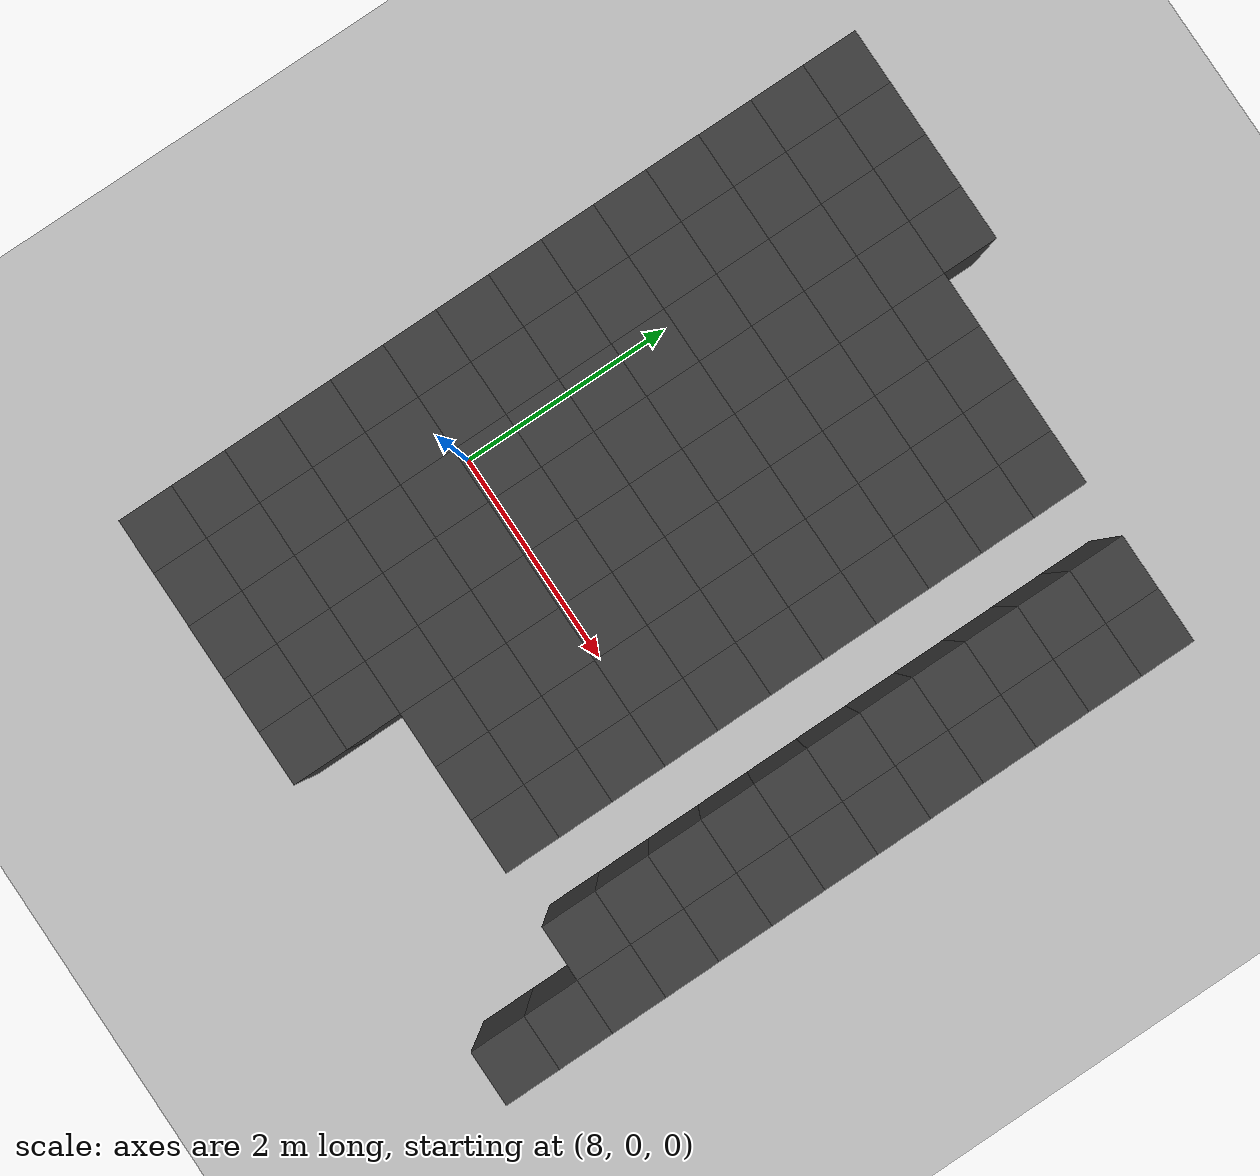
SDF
<sdf version="1.7">
 <world name="map_14190">
  <model name="ground_plane">
   <static>true</static>
   <link name="link">
    <collision name="collision">
     <geometry><plane><normal>0 0 1</normal><size>200 200</size></plane></geometry>
    </collision>
    <visual name="visual">
     <geometry><plane><normal>0 0 1</normal><size>200 200</size></plane></geometry>
     <material><ambient>0.8 0.8 0.8 1</ambient><diffuse>0.8 0.8 0.8 1</diffuse></material>
    </visual>
   </link>
  </model>
  <model name="maze_environment">
   <static>true</static>
   <link name="wall_586">
    <pose>7.250 4.250 0.500 0 0 0</pose>
    <collision name="col"><geometry><box><size>0.5 0.5 1.0</size></box></geometry></collision>
    <visual name="vis">
     <geometry><box><size>0.5 0.5 1.0</size></box></geometry>
     <material><ambient>0.15 0.15 0.15 1</ambient><diffuse>0.25 0.25 0.25 1</diffuse></material>
    </visual>
   </link>
   <link name="wall_587">
    <pose>7.750 4.250 0.500 0 0 0</pose>
    <collision name="col"><geometry><box><size>0.5 0.5 1.0</size></box></geometry></collision>
    <visual name="vis">
     <geometry><box><size>0.5 0.5 1.0</size></box></geometry>
     <material><ambient>0.15 0.15 0.15 1</ambient><diffuse>0.25 0.25 0.25 1</diffuse></material>
    </visual>
   </link>
   <link name="wall_588">
    <pose>8.250 4.250 0.500 0 0 0</pose>
    <collision name="col"><geometry><box><size>0.5 0.5 1.0</size></box></geometry></collision>
    <visual name="vis">
     <geometry><box><size>0.5 0.5 1.0</size></box></geometry>
     <material><ambient>0.15 0.15 0.15 1</ambient><diffuse>0.25 0.25 0.25 1</diffuse></material>
    </visual>
   </link>
   <link name="wall_589">
    <pose>8.750 4.250 0.500 0 0 0</pose>
    <collision name="col"><geometry><box><size>0.5 0.5 1.0</size></box></geometry></collision>
    <visual name="vis">
     <geometry><box><size>0.5 0.5 1.0</size></box></geometry>
     <material><ambient>0.15 0.15 0.15 1</ambient><diffuse>0.25 0.25 0.25 1</diffuse></material>
    </visual>
   </link>
   <link name="wall_616">
    <pose>7.250 3.750 0.500 0 0 0</pose>
    <collision name="col"><geometry><box><size>0.5 0.5 1.0</size></box></geometry></collision>
    <visual name="vis">
     <geometry><box><size>0.5 0.5 1.0</size></box></geometry>
     <material><ambient>0.15 0.15 0.15 1</ambient><diffuse>0.25 0.25 0.25 1</diffuse></material>
    </visual>
   </link>
   <link name="wall_617">
    <pose>7.750 3.750 0.500 0 0 0</pose>
    <collision name="col"><geometry><box><size>0.5 0.5 1.0</size></box></geometry></collision>
    <visual name="vis">
     <geometry><box><size>0.5 0.5 1.0</size></box></geometry>
     <material><ambient>0.15 0.15 0.15 1</ambient><diffuse>0.25 0.25 0.25 1</diffuse></material>
    </visual>
   </link>
   <link name="wall_618">
    <pose>8.250 3.750 0.500 0 0 0</pose>
    <collision name="col"><geometry><box><size>0.5 0.5 1.0</size></box></geometry></collision>
    <visual name="vis">
     <geometry><box><size>0.5 0.5 1.0</size></box></geometry>
     <material><ambient>0.15 0.15 0.15 1</ambient><diffuse>0.25 0.25 0.25 1</diffuse></material>
    </visual>
   </link>
   <link name="wall_619">
    <pose>8.750 3.750 0.500 0 0 0</pose>
    <collision name="col"><geometry><box><size>0.5 0.5 1.0</size></box></geometry></collision>
    <visual name="vis">
     <geometry><box><size>0.5 0.5 1.0</size></box></geometry>
     <material><ambient>0.15 0.15 0.15 1</ambient><diffuse>0.25 0.25 0.25 1</diffuse></material>
    </visual>
   </link>
   <link name="wall_620">
    <pose>9.250 3.750 0.500 0 0 0</pose>
    <collision name="col"><geometry><box><size>0.5 0.5 1.0</size></box></geometry></collision>
    <visual name="vis">
     <geometry><box><size>0.5 0.5 1.0</size></box></geometry>
     <material><ambient>0.15 0.15 0.15 1</ambient><diffuse>0.25 0.25 0.25 1</diffuse></material>
    </visual>
   </link>
   <link name="wall_621">
    <pose>9.750 3.750 0.500 0 0 0</pose>
    <collision name="col"><geometry><box><size>0.5 0.5 1.0</size></box></geometry></collision>
    <visual name="vis">
     <geometry><box><size>0.5 0.5 1.0</size></box></geometry>
     <material><ambient>0.15 0.15 0.15 1</ambient><diffuse>0.25 0.25 0.25 1</diffuse></material>
    </visual>
   </link>
   <link name="wall_622">
    <pose>10.250 3.750 0.500 0 0 0</pose>
    <collision name="col"><geometry><box><size>0.5 0.5 1.0</size></box></geometry></collision>
    <visual name="vis">
     <geometry><box><size>0.5 0.5 1.0</size></box></geometry>
     <material><ambient>0.15 0.15 0.15 1</ambient><diffuse>0.25 0.25 0.25 1</diffuse></material>
    </visual>
   </link>
   <link name="wall_623">
    <pose>10.750 3.750 0.500 0 0 0</pose>
    <collision name="col"><geometry><box><size>0.5 0.5 1.0</size></box></geometry></collision>
    <visual name="vis">
     <geometry><box><size>0.5 0.5 1.0</size></box></geometry>
     <material><ambient>0.15 0.15 0.15 1</ambient><diffuse>0.25 0.25 0.25 1</diffuse></material>
    </visual>
   </link>
   <link name="wall_624">
    <pose>11.750 3.750 0.500 0 0 0</pose>
    <collision name="col"><geometry><box><size>0.5 0.5 1.0</size></box></geometry></collision>
    <visual name="vis">
     <geometry><box><size>0.5 0.5 1.0</size></box></geometry>
     <material><ambient>0.15 0.15 0.15 1</ambient><diffuse>0.25 0.25 0.25 1</diffuse></material>
    </visual>
   </link>
   <link name="wall_625">
    <pose>12.250 3.750 0.500 0 0 0</pose>
    <collision name="col"><geometry><box><size>0.5 0.5 1.0</size></box></geometry></collision>
    <visual name="vis">
     <geometry><box><size>0.5 0.5 1.0</size></box></geometry>
     <material><ambient>0.15 0.15 0.15 1</ambient><diffuse>0.25 0.25 0.25 1</diffuse></material>
    </visual>
   </link>
   <link name="wall_649">
    <pose>7.250 3.250 0.500 0 0 0</pose>
    <collision name="col"><geometry><box><size>0.5 0.5 1.0</size></box></geometry></collision>
    <visual name="vis">
     <geometry><box><size>0.5 0.5 1.0</size></box></geometry>
     <material><ambient>0.15 0.15 0.15 1</ambient><diffuse>0.25 0.25 0.25 1</diffuse></material>
    </visual>
   </link>
   <link name="wall_650">
    <pose>7.750 3.250 0.500 0 0 0</pose>
    <collision name="col"><geometry><box><size>0.5 0.5 1.0</size></box></geometry></collision>
    <visual name="vis">
     <geometry><box><size>0.5 0.5 1.0</size></box></geometry>
     <material><ambient>0.15 0.15 0.15 1</ambient><diffuse>0.25 0.25 0.25 1</diffuse></material>
    </visual>
   </link>
   <link name="wall_651">
    <pose>8.250 3.250 0.500 0 0 0</pose>
    <collision name="col"><geometry><box><size>0.5 0.5 1.0</size></box></geometry></collision>
    <visual name="vis">
     <geometry><box><size>0.5 0.5 1.0</size></box></geometry>
     <material><ambient>0.15 0.15 0.15 1</ambient><diffuse>0.25 0.25 0.25 1</diffuse></material>
    </visual>
   </link>
   <link name="wall_652">
    <pose>8.750 3.250 0.500 0 0 0</pose>
    <collision name="col"><geometry><box><size>0.5 0.5 1.0</size></box></geometry></collision>
    <visual name="vis">
     <geometry><box><size>0.5 0.5 1.0</size></box></geometry>
     <material><ambient>0.15 0.15 0.15 1</ambient><diffuse>0.25 0.25 0.25 1</diffuse></material>
    </visual>
   </link>
   <link name="wall_653">
    <pose>9.250 3.250 0.500 0 0 0</pose>
    <collision name="col"><geometry><box><size>0.5 0.5 1.0</size></box></geometry></collision>
    <visual name="vis">
     <geometry><box><size>0.5 0.5 1.0</size></box></geometry>
     <material><ambient>0.15 0.15 0.15 1</ambient><diffuse>0.25 0.25 0.25 1</diffuse></material>
    </visual>
   </link>
   <link name="wall_654">
    <pose>9.750 3.250 0.500 0 0 0</pose>
    <collision name="col"><geometry><box><size>0.5 0.5 1.0</size></box></geometry></collision>
    <visual name="vis">
     <geometry><box><size>0.5 0.5 1.0</size></box></geometry>
     <material><ambient>0.15 0.15 0.15 1</ambient><diffuse>0.25 0.25 0.25 1</diffuse></material>
    </visual>
   </link>
   <link name="wall_655">
    <pose>10.250 3.250 0.500 0 0 0</pose>
    <collision name="col"><geometry><box><size>0.5 0.5 1.0</size></box></geometry></collision>
    <visual name="vis">
     <geometry><box><size>0.5 0.5 1.0</size></box></geometry>
     <material><ambient>0.15 0.15 0.15 1</ambient><diffuse>0.25 0.25 0.25 1</diffuse></material>
    </visual>
   </link>
   <link name="wall_656">
    <pose>10.750 3.250 0.500 0 0 0</pose>
    <collision name="col"><geometry><box><size>0.5 0.5 1.0</size></box></geometry></collision>
    <visual name="vis">
     <geometry><box><size>0.5 0.5 1.0</size></box></geometry>
     <material><ambient>0.15 0.15 0.15 1</ambient><diffuse>0.25 0.25 0.25 1</diffuse></material>
    </visual>
   </link>
   <link name="wall_657">
    <pose>11.750 3.250 0.500 0 0 0</pose>
    <collision name="col"><geometry><box><size>0.5 0.5 1.0</size></box></geometry></collision>
    <visual name="vis">
     <geometry><box><size>0.5 0.5 1.0</size></box></geometry>
     <material><ambient>0.15 0.15 0.15 1</ambient><diffuse>0.25 0.25 0.25 1</diffuse></material>
    </visual>
   </link>
   <link name="wall_658">
    <pose>12.250 3.250 0.500 0 0 0</pose>
    <collision name="col"><geometry><box><size>0.5 0.5 1.0</size></box></geometry></collision>
    <visual name="vis">
     <geometry><box><size>0.5 0.5 1.0</size></box></geometry>
     <material><ambient>0.15 0.15 0.15 1</ambient><diffuse>0.25 0.25 0.25 1</diffuse></material>
    </visual>
   </link>
   <link name="wall_691">
    <pose>7.250 2.750 0.500 0 0 0</pose>
    <collision name="col"><geometry><box><size>0.5 0.5 1.0</size></box></geometry></collision>
    <visual name="vis">
     <geometry><box><size>0.5 0.5 1.0</size></box></geometry>
     <material><ambient>0.15 0.15 0.15 1</ambient><diffuse>0.25 0.25 0.25 1</diffuse></material>
    </visual>
   </link>
   <link name="wall_692">
    <pose>7.750 2.750 0.500 0 0 0</pose>
    <collision name="col"><geometry><box><size>0.5 0.5 1.0</size></box></geometry></collision>
    <visual name="vis">
     <geometry><box><size>0.5 0.5 1.0</size></box></geometry>
     <material><ambient>0.15 0.15 0.15 1</ambient><diffuse>0.25 0.25 0.25 1</diffuse></material>
    </visual>
   </link>
   <link name="wall_693">
    <pose>8.250 2.750 0.500 0 0 0</pose>
    <collision name="col"><geometry><box><size>0.5 0.5 1.0</size></box></geometry></collision>
    <visual name="vis">
     <geometry><box><size>0.5 0.5 1.0</size></box></geometry>
     <material><ambient>0.15 0.15 0.15 1</ambient><diffuse>0.25 0.25 0.25 1</diffuse></material>
    </visual>
   </link>
   <link name="wall_694">
    <pose>8.750 2.750 0.500 0 0 0</pose>
    <collision name="col"><geometry><box><size>0.5 0.5 1.0</size></box></geometry></collision>
    <visual name="vis">
     <geometry><box><size>0.5 0.5 1.0</size></box></geometry>
     <material><ambient>0.15 0.15 0.15 1</ambient><diffuse>0.25 0.25 0.25 1</diffuse></material>
    </visual>
   </link>
   <link name="wall_695">
    <pose>9.250 2.750 0.500 0 0 0</pose>
    <collision name="col"><geometry><box><size>0.5 0.5 1.0</size></box></geometry></collision>
    <visual name="vis">
     <geometry><box><size>0.5 0.5 1.0</size></box></geometry>
     <material><ambient>0.15 0.15 0.15 1</ambient><diffuse>0.25 0.25 0.25 1</diffuse></material>
    </visual>
   </link>
   <link name="wall_696">
    <pose>9.750 2.750 0.500 0 0 0</pose>
    <collision name="col"><geometry><box><size>0.5 0.5 1.0</size></box></geometry></collision>
    <visual name="vis">
     <geometry><box><size>0.5 0.5 1.0</size></box></geometry>
     <material><ambient>0.15 0.15 0.15 1</ambient><diffuse>0.25 0.25 0.25 1</diffuse></material>
    </visual>
   </link>
   <link name="wall_697">
    <pose>10.250 2.750 0.500 0 0 0</pose>
    <collision name="col"><geometry><box><size>0.5 0.5 1.0</size></box></geometry></collision>
    <visual name="vis">
     <geometry><box><size>0.5 0.5 1.0</size></box></geometry>
     <material><ambient>0.15 0.15 0.15 1</ambient><diffuse>0.25 0.25 0.25 1</diffuse></material>
    </visual>
   </link>
   <link name="wall_698">
    <pose>10.750 2.750 0.500 0 0 0</pose>
    <collision name="col"><geometry><box><size>0.5 0.5 1.0</size></box></geometry></collision>
    <visual name="vis">
     <geometry><box><size>0.5 0.5 1.0</size></box></geometry>
     <material><ambient>0.15 0.15 0.15 1</ambient><diffuse>0.25 0.25 0.25 1</diffuse></material>
    </visual>
   </link>
   <link name="wall_699">
    <pose>11.750 2.750 0.500 0 0 0</pose>
    <collision name="col"><geometry><box><size>0.5 0.5 1.0</size></box></geometry></collision>
    <visual name="vis">
     <geometry><box><size>0.5 0.5 1.0</size></box></geometry>
     <material><ambient>0.15 0.15 0.15 1</ambient><diffuse>0.25 0.25 0.25 1</diffuse></material>
    </visual>
   </link>
   <link name="wall_700">
    <pose>12.250 2.750 0.500 0 0 0</pose>
    <collision name="col"><geometry><box><size>0.5 0.5 1.0</size></box></geometry></collision>
    <visual name="vis">
     <geometry><box><size>0.5 0.5 1.0</size></box></geometry>
     <material><ambient>0.15 0.15 0.15 1</ambient><diffuse>0.25 0.25 0.25 1</diffuse></material>
    </visual>
   </link>
   <link name="wall_733">
    <pose>7.250 2.250 0.500 0 0 0</pose>
    <collision name="col"><geometry><box><size>0.5 0.5 1.0</size></box></geometry></collision>
    <visual name="vis">
     <geometry><box><size>0.5 0.5 1.0</size></box></geometry>
     <material><ambient>0.15 0.15 0.15 1</ambient><diffuse>0.25 0.25 0.25 1</diffuse></material>
    </visual>
   </link>
   <link name="wall_734">
    <pose>7.750 2.250 0.500 0 0 0</pose>
    <collision name="col"><geometry><box><size>0.5 0.5 1.0</size></box></geometry></collision>
    <visual name="vis">
     <geometry><box><size>0.5 0.5 1.0</size></box></geometry>
     <material><ambient>0.15 0.15 0.15 1</ambient><diffuse>0.25 0.25 0.25 1</diffuse></material>
    </visual>
   </link>
   <link name="wall_735">
    <pose>8.250 2.250 0.500 0 0 0</pose>
    <collision name="col"><geometry><box><size>0.5 0.5 1.0</size></box></geometry></collision>
    <visual name="vis">
     <geometry><box><size>0.5 0.5 1.0</size></box></geometry>
     <material><ambient>0.15 0.15 0.15 1</ambient><diffuse>0.25 0.25 0.25 1</diffuse></material>
    </visual>
   </link>
   <link name="wall_736">
    <pose>8.750 2.250 0.500 0 0 0</pose>
    <collision name="col"><geometry><box><size>0.5 0.5 1.0</size></box></geometry></collision>
    <visual name="vis">
     <geometry><box><size>0.5 0.5 1.0</size></box></geometry>
     <material><ambient>0.15 0.15 0.15 1</ambient><diffuse>0.25 0.25 0.25 1</diffuse></material>
    </visual>
   </link>
   <link name="wall_737">
    <pose>9.250 2.250 0.500 0 0 0</pose>
    <collision name="col"><geometry><box><size>0.5 0.5 1.0</size></box></geometry></collision>
    <visual name="vis">
     <geometry><box><size>0.5 0.5 1.0</size></box></geometry>
     <material><ambient>0.15 0.15 0.15 1</ambient><diffuse>0.25 0.25 0.25 1</diffuse></material>
    </visual>
   </link>
   <link name="wall_738">
    <pose>9.750 2.250 0.500 0 0 0</pose>
    <collision name="col"><geometry><box><size>0.5 0.5 1.0</size></box></geometry></collision>
    <visual name="vis">
     <geometry><box><size>0.5 0.5 1.0</size></box></geometry>
     <material><ambient>0.15 0.15 0.15 1</ambient><diffuse>0.25 0.25 0.25 1</diffuse></material>
    </visual>
   </link>
   <link name="wall_739">
    <pose>10.250 2.250 0.500 0 0 0</pose>
    <collision name="col"><geometry><box><size>0.5 0.5 1.0</size></box></geometry></collision>
    <visual name="vis">
     <geometry><box><size>0.5 0.5 1.0</size></box></geometry>
     <material><ambient>0.15 0.15 0.15 1</ambient><diffuse>0.25 0.25 0.25 1</diffuse></material>
    </visual>
   </link>
   <link name="wall_740">
    <pose>10.750 2.250 0.500 0 0 0</pose>
    <collision name="col"><geometry><box><size>0.5 0.5 1.0</size></box></geometry></collision>
    <visual name="vis">
     <geometry><box><size>0.5 0.5 1.0</size></box></geometry>
     <material><ambient>0.15 0.15 0.15 1</ambient><diffuse>0.25 0.25 0.25 1</diffuse></material>
    </visual>
   </link>
   <link name="wall_741">
    <pose>11.750 2.250 0.500 0 0 0</pose>
    <collision name="col"><geometry><box><size>0.5 0.5 1.0</size></box></geometry></collision>
    <visual name="vis">
     <geometry><box><size>0.5 0.5 1.0</size></box></geometry>
     <material><ambient>0.15 0.15 0.15 1</ambient><diffuse>0.25 0.25 0.25 1</diffuse></material>
    </visual>
   </link>
   <link name="wall_742">
    <pose>12.250 2.250 0.500 0 0 0</pose>
    <collision name="col"><geometry><box><size>0.5 0.5 1.0</size></box></geometry></collision>
    <visual name="vis">
     <geometry><box><size>0.5 0.5 1.0</size></box></geometry>
     <material><ambient>0.15 0.15 0.15 1</ambient><diffuse>0.25 0.25 0.25 1</diffuse></material>
    </visual>
   </link>
   <link name="wall_775">
    <pose>7.250 1.750 0.500 0 0 0</pose>
    <collision name="col"><geometry><box><size>0.5 0.5 1.0</size></box></geometry></collision>
    <visual name="vis">
     <geometry><box><size>0.5 0.5 1.0</size></box></geometry>
     <material><ambient>0.15 0.15 0.15 1</ambient><diffuse>0.25 0.25 0.25 1</diffuse></material>
    </visual>
   </link>
   <link name="wall_776">
    <pose>7.750 1.750 0.500 0 0 0</pose>
    <collision name="col"><geometry><box><size>0.5 0.5 1.0</size></box></geometry></collision>
    <visual name="vis">
     <geometry><box><size>0.5 0.5 1.0</size></box></geometry>
     <material><ambient>0.15 0.15 0.15 1</ambient><diffuse>0.25 0.25 0.25 1</diffuse></material>
    </visual>
   </link>
   <link name="wall_777">
    <pose>8.250 1.750 0.500 0 0 0</pose>
    <collision name="col"><geometry><box><size>0.5 0.5 1.0</size></box></geometry></collision>
    <visual name="vis">
     <geometry><box><size>0.5 0.5 1.0</size></box></geometry>
     <material><ambient>0.15 0.15 0.15 1</ambient><diffuse>0.25 0.25 0.25 1</diffuse></material>
    </visual>
   </link>
   <link name="wall_778">
    <pose>8.750 1.750 0.500 0 0 0</pose>
    <collision name="col"><geometry><box><size>0.5 0.5 1.0</size></box></geometry></collision>
    <visual name="vis">
     <geometry><box><size>0.5 0.5 1.0</size></box></geometry>
     <material><ambient>0.15 0.15 0.15 1</ambient><diffuse>0.25 0.25 0.25 1</diffuse></material>
    </visual>
   </link>
   <link name="wall_779">
    <pose>9.250 1.750 0.500 0 0 0</pose>
    <collision name="col"><geometry><box><size>0.5 0.5 1.0</size></box></geometry></collision>
    <visual name="vis">
     <geometry><box><size>0.5 0.5 1.0</size></box></geometry>
     <material><ambient>0.15 0.15 0.15 1</ambient><diffuse>0.25 0.25 0.25 1</diffuse></material>
    </visual>
   </link>
   <link name="wall_780">
    <pose>9.750 1.750 0.500 0 0 0</pose>
    <collision name="col"><geometry><box><size>0.5 0.5 1.0</size></box></geometry></collision>
    <visual name="vis">
     <geometry><box><size>0.5 0.5 1.0</size></box></geometry>
     <material><ambient>0.15 0.15 0.15 1</ambient><diffuse>0.25 0.25 0.25 1</diffuse></material>
    </visual>
   </link>
   <link name="wall_781">
    <pose>10.250 1.750 0.500 0 0 0</pose>
    <collision name="col"><geometry><box><size>0.5 0.5 1.0</size></box></geometry></collision>
    <visual name="vis">
     <geometry><box><size>0.5 0.5 1.0</size></box></geometry>
     <material><ambient>0.15 0.15 0.15 1</ambient><diffuse>0.25 0.25 0.25 1</diffuse></material>
    </visual>
   </link>
   <link name="wall_782">
    <pose>10.750 1.750 0.500 0 0 0</pose>
    <collision name="col"><geometry><box><size>0.5 0.5 1.0</size></box></geometry></collision>
    <visual name="vis">
     <geometry><box><size>0.5 0.5 1.0</size></box></geometry>
     <material><ambient>0.15 0.15 0.15 1</ambient><diffuse>0.25 0.25 0.25 1</diffuse></material>
    </visual>
   </link>
   <link name="wall_783">
    <pose>11.750 1.750 0.500 0 0 0</pose>
    <collision name="col"><geometry><box><size>0.5 0.5 1.0</size></box></geometry></collision>
    <visual name="vis">
     <geometry><box><size>0.5 0.5 1.0</size></box></geometry>
     <material><ambient>0.15 0.15 0.15 1</ambient><diffuse>0.25 0.25 0.25 1</diffuse></material>
    </visual>
   </link>
   <link name="wall_784">
    <pose>12.250 1.750 0.500 0 0 0</pose>
    <collision name="col"><geometry><box><size>0.5 0.5 1.0</size></box></geometry></collision>
    <visual name="vis">
     <geometry><box><size>0.5 0.5 1.0</size></box></geometry>
     <material><ambient>0.15 0.15 0.15 1</ambient><diffuse>0.25 0.25 0.25 1</diffuse></material>
    </visual>
   </link>
   <link name="wall_809">
    <pose>7.250 1.250 0.500 0 0 0</pose>
    <collision name="col"><geometry><box><size>0.5 0.5 1.0</size></box></geometry></collision>
    <visual name="vis">
     <geometry><box><size>0.5 0.5 1.0</size></box></geometry>
     <material><ambient>0.15 0.15 0.15 1</ambient><diffuse>0.25 0.25 0.25 1</diffuse></material>
    </visual>
   </link>
   <link name="wall_810">
    <pose>7.750 1.250 0.500 0 0 0</pose>
    <collision name="col"><geometry><box><size>0.5 0.5 1.0</size></box></geometry></collision>
    <visual name="vis">
     <geometry><box><size>0.5 0.5 1.0</size></box></geometry>
     <material><ambient>0.15 0.15 0.15 1</ambient><diffuse>0.25 0.25 0.25 1</diffuse></material>
    </visual>
   </link>
   <link name="wall_811">
    <pose>8.250 1.250 0.500 0 0 0</pose>
    <collision name="col"><geometry><box><size>0.5 0.5 1.0</size></box></geometry></collision>
    <visual name="vis">
     <geometry><box><size>0.5 0.5 1.0</size></box></geometry>
     <material><ambient>0.15 0.15 0.15 1</ambient><diffuse>0.25 0.25 0.25 1</diffuse></material>
    </visual>
   </link>
   <link name="wall_812">
    <pose>8.750 1.250 0.500 0 0 0</pose>
    <collision name="col"><geometry><box><size>0.5 0.5 1.0</size></box></geometry></collision>
    <visual name="vis">
     <geometry><box><size>0.5 0.5 1.0</size></box></geometry>
     <material><ambient>0.15 0.15 0.15 1</ambient><diffuse>0.25 0.25 0.25 1</diffuse></material>
    </visual>
   </link>
   <link name="wall_813">
    <pose>9.250 1.250 0.500 0 0 0</pose>
    <collision name="col"><geometry><box><size>0.5 0.5 1.0</size></box></geometry></collision>
    <visual name="vis">
     <geometry><box><size>0.5 0.5 1.0</size></box></geometry>
     <material><ambient>0.15 0.15 0.15 1</ambient><diffuse>0.25 0.25 0.25 1</diffuse></material>
    </visual>
   </link>
   <link name="wall_814">
    <pose>9.750 1.250 0.500 0 0 0</pose>
    <collision name="col"><geometry><box><size>0.5 0.5 1.0</size></box></geometry></collision>
    <visual name="vis">
     <geometry><box><size>0.5 0.5 1.0</size></box></geometry>
     <material><ambient>0.15 0.15 0.15 1</ambient><diffuse>0.25 0.25 0.25 1</diffuse></material>
    </visual>
   </link>
   <link name="wall_815">
    <pose>10.250 1.250 0.500 0 0 0</pose>
    <collision name="col"><geometry><box><size>0.5 0.5 1.0</size></box></geometry></collision>
    <visual name="vis">
     <geometry><box><size>0.5 0.5 1.0</size></box></geometry>
     <material><ambient>0.15 0.15 0.15 1</ambient><diffuse>0.25 0.25 0.25 1</diffuse></material>
    </visual>
   </link>
   <link name="wall_816">
    <pose>10.750 1.250 0.500 0 0 0</pose>
    <collision name="col"><geometry><box><size>0.5 0.5 1.0</size></box></geometry></collision>
    <visual name="vis">
     <geometry><box><size>0.5 0.5 1.0</size></box></geometry>
     <material><ambient>0.15 0.15 0.15 1</ambient><diffuse>0.25 0.25 0.25 1</diffuse></material>
    </visual>
   </link>
   <link name="wall_817">
    <pose>11.750 1.250 0.500 0 0 0</pose>
    <collision name="col"><geometry><box><size>0.5 0.5 1.0</size></box></geometry></collision>
    <visual name="vis">
     <geometry><box><size>0.5 0.5 1.0</size></box></geometry>
     <material><ambient>0.15 0.15 0.15 1</ambient><diffuse>0.25 0.25 0.25 1</diffuse></material>
    </visual>
   </link>
   <link name="wall_818">
    <pose>12.250 1.250 0.500 0 0 0</pose>
    <collision name="col"><geometry><box><size>0.5 0.5 1.0</size></box></geometry></collision>
    <visual name="vis">
     <geometry><box><size>0.5 0.5 1.0</size></box></geometry>
     <material><ambient>0.15 0.15 0.15 1</ambient><diffuse>0.25 0.25 0.25 1</diffuse></material>
    </visual>
   </link>
   <link name="wall_843">
    <pose>7.250 0.750 0.500 0 0 0</pose>
    <collision name="col"><geometry><box><size>0.5 0.5 1.0</size></box></geometry></collision>
    <visual name="vis">
     <geometry><box><size>0.5 0.5 1.0</size></box></geometry>
     <material><ambient>0.15 0.15 0.15 1</ambient><diffuse>0.25 0.25 0.25 1</diffuse></material>
    </visual>
   </link>
   <link name="wall_844">
    <pose>7.750 0.750 0.500 0 0 0</pose>
    <collision name="col"><geometry><box><size>0.5 0.5 1.0</size></box></geometry></collision>
    <visual name="vis">
     <geometry><box><size>0.5 0.5 1.0</size></box></geometry>
     <material><ambient>0.15 0.15 0.15 1</ambient><diffuse>0.25 0.25 0.25 1</diffuse></material>
    </visual>
   </link>
   <link name="wall_845">
    <pose>8.250 0.750 0.500 0 0 0</pose>
    <collision name="col"><geometry><box><size>0.5 0.5 1.0</size></box></geometry></collision>
    <visual name="vis">
     <geometry><box><size>0.5 0.5 1.0</size></box></geometry>
     <material><ambient>0.15 0.15 0.15 1</ambient><diffuse>0.25 0.25 0.25 1</diffuse></material>
    </visual>
   </link>
   <link name="wall_846">
    <pose>8.750 0.750 0.500 0 0 0</pose>
    <collision name="col"><geometry><box><size>0.5 0.5 1.0</size></box></geometry></collision>
    <visual name="vis">
     <geometry><box><size>0.5 0.5 1.0</size></box></geometry>
     <material><ambient>0.15 0.15 0.15 1</ambient><diffuse>0.25 0.25 0.25 1</diffuse></material>
    </visual>
   </link>
   <link name="wall_847">
    <pose>9.250 0.750 0.500 0 0 0</pose>
    <collision name="col"><geometry><box><size>0.5 0.5 1.0</size></box></geometry></collision>
    <visual name="vis">
     <geometry><box><size>0.5 0.5 1.0</size></box></geometry>
     <material><ambient>0.15 0.15 0.15 1</ambient><diffuse>0.25 0.25 0.25 1</diffuse></material>
    </visual>
   </link>
   <link name="wall_848">
    <pose>9.750 0.750 0.500 0 0 0</pose>
    <collision name="col"><geometry><box><size>0.5 0.5 1.0</size></box></geometry></collision>
    <visual name="vis">
     <geometry><box><size>0.5 0.5 1.0</size></box></geometry>
     <material><ambient>0.15 0.15 0.15 1</ambient><diffuse>0.25 0.25 0.25 1</diffuse></material>
    </visual>
   </link>
   <link name="wall_849">
    <pose>10.250 0.750 0.500 0 0 0</pose>
    <collision name="col"><geometry><box><size>0.5 0.5 1.0</size></box></geometry></collision>
    <visual name="vis">
     <geometry><box><size>0.5 0.5 1.0</size></box></geometry>
     <material><ambient>0.15 0.15 0.15 1</ambient><diffuse>0.25 0.25 0.25 1</diffuse></material>
    </visual>
   </link>
   <link name="wall_850">
    <pose>10.750 0.750 0.500 0 0 0</pose>
    <collision name="col"><geometry><box><size>0.5 0.5 1.0</size></box></geometry></collision>
    <visual name="vis">
     <geometry><box><size>0.5 0.5 1.0</size></box></geometry>
     <material><ambient>0.15 0.15 0.15 1</ambient><diffuse>0.25 0.25 0.25 1</diffuse></material>
    </visual>
   </link>
   <link name="wall_851">
    <pose>11.750 0.750 0.500 0 0 0</pose>
    <collision name="col"><geometry><box><size>0.5 0.5 1.0</size></box></geometry></collision>
    <visual name="vis">
     <geometry><box><size>0.5 0.5 1.0</size></box></geometry>
     <material><ambient>0.15 0.15 0.15 1</ambient><diffuse>0.25 0.25 0.25 1</diffuse></material>
    </visual>
   </link>
   <link name="wall_852">
    <pose>12.250 0.750 0.500 0 0 0</pose>
    <collision name="col"><geometry><box><size>0.5 0.5 1.0</size></box></geometry></collision>
    <visual name="vis">
     <geometry><box><size>0.5 0.5 1.0</size></box></geometry>
     <material><ambient>0.15 0.15 0.15 1</ambient><diffuse>0.25 0.25 0.25 1</diffuse></material>
    </visual>
   </link>
   <link name="wall_877">
    <pose>7.250 0.250 0.500 0 0 0</pose>
    <collision name="col"><geometry><box><size>0.5 0.5 1.0</size></box></geometry></collision>
    <visual name="vis">
     <geometry><box><size>0.5 0.5 1.0</size></box></geometry>
     <material><ambient>0.15 0.15 0.15 1</ambient><diffuse>0.25 0.25 0.25 1</diffuse></material>
    </visual>
   </link>
   <link name="wall_878">
    <pose>7.750 0.250 0.500 0 0 0</pose>
    <collision name="col"><geometry><box><size>0.5 0.5 1.0</size></box></geometry></collision>
    <visual name="vis">
     <geometry><box><size>0.5 0.5 1.0</size></box></geometry>
     <material><ambient>0.15 0.15 0.15 1</ambient><diffuse>0.25 0.25 0.25 1</diffuse></material>
    </visual>
   </link>
   <link name="wall_879">
    <pose>8.250 0.250 0.500 0 0 0</pose>
    <collision name="col"><geometry><box><size>0.5 0.5 1.0</size></box></geometry></collision>
    <visual name="vis">
     <geometry><box><size>0.5 0.5 1.0</size></box></geometry>
     <material><ambient>0.15 0.15 0.15 1</ambient><diffuse>0.25 0.25 0.25 1</diffuse></material>
    </visual>
   </link>
   <link name="wall_880">
    <pose>8.750 0.250 0.500 0 0 0</pose>
    <collision name="col"><geometry><box><size>0.5 0.5 1.0</size></box></geometry></collision>
    <visual name="vis">
     <geometry><box><size>0.5 0.5 1.0</size></box></geometry>
     <material><ambient>0.15 0.15 0.15 1</ambient><diffuse>0.25 0.25 0.25 1</diffuse></material>
    </visual>
   </link>
   <link name="wall_881">
    <pose>9.250 0.250 0.500 0 0 0</pose>
    <collision name="col"><geometry><box><size>0.5 0.5 1.0</size></box></geometry></collision>
    <visual name="vis">
     <geometry><box><size>0.5 0.5 1.0</size></box></geometry>
     <material><ambient>0.15 0.15 0.15 1</ambient><diffuse>0.25 0.25 0.25 1</diffuse></material>
    </visual>
   </link>
   <link name="wall_882">
    <pose>9.750 0.250 0.500 0 0 0</pose>
    <collision name="col"><geometry><box><size>0.5 0.5 1.0</size></box></geometry></collision>
    <visual name="vis">
     <geometry><box><size>0.5 0.5 1.0</size></box></geometry>
     <material><ambient>0.15 0.15 0.15 1</ambient><diffuse>0.25 0.25 0.25 1</diffuse></material>
    </visual>
   </link>
   <link name="wall_883">
    <pose>10.250 0.250 0.500 0 0 0</pose>
    <collision name="col"><geometry><box><size>0.5 0.5 1.0</size></box></geometry></collision>
    <visual name="vis">
     <geometry><box><size>0.5 0.5 1.0</size></box></geometry>
     <material><ambient>0.15 0.15 0.15 1</ambient><diffuse>0.25 0.25 0.25 1</diffuse></material>
    </visual>
   </link>
   <link name="wall_884">
    <pose>10.750 0.250 0.500 0 0 0</pose>
    <collision name="col"><geometry><box><size>0.5 0.5 1.0</size></box></geometry></collision>
    <visual name="vis">
     <geometry><box><size>0.5 0.5 1.0</size></box></geometry>
     <material><ambient>0.15 0.15 0.15 1</ambient><diffuse>0.25 0.25 0.25 1</diffuse></material>
    </visual>
   </link>
   <link name="wall_885">
    <pose>11.750 0.250 0.500 0 0 0</pose>
    <collision name="col"><geometry><box><size>0.5 0.5 1.0</size></box></geometry></collision>
    <visual name="vis">
     <geometry><box><size>0.5 0.5 1.0</size></box></geometry>
     <material><ambient>0.15 0.15 0.15 1</ambient><diffuse>0.25 0.25 0.25 1</diffuse></material>
    </visual>
   </link>
   <link name="wall_886">
    <pose>12.250 0.250 0.500 0 0 0</pose>
    <collision name="col"><geometry><box><size>0.5 0.5 1.0</size></box></geometry></collision>
    <visual name="vis">
     <geometry><box><size>0.5 0.5 1.0</size></box></geometry>
     <material><ambient>0.15 0.15 0.15 1</ambient><diffuse>0.25 0.25 0.25 1</diffuse></material>
    </visual>
   </link>
   <link name="wall_911">
    <pose>7.250 -0.250 0.500 0 0 0</pose>
    <collision name="col"><geometry><box><size>0.5 0.5 1.0</size></box></geometry></collision>
    <visual name="vis">
     <geometry><box><size>0.5 0.5 1.0</size></box></geometry>
     <material><ambient>0.15 0.15 0.15 1</ambient><diffuse>0.25 0.25 0.25 1</diffuse></material>
    </visual>
   </link>
   <link name="wall_912">
    <pose>7.750 -0.250 0.500 0 0 0</pose>
    <collision name="col"><geometry><box><size>0.5 0.5 1.0</size></box></geometry></collision>
    <visual name="vis">
     <geometry><box><size>0.5 0.5 1.0</size></box></geometry>
     <material><ambient>0.15 0.15 0.15 1</ambient><diffuse>0.25 0.25 0.25 1</diffuse></material>
    </visual>
   </link>
   <link name="wall_913">
    <pose>8.250 -0.250 0.500 0 0 0</pose>
    <collision name="col"><geometry><box><size>0.5 0.5 1.0</size></box></geometry></collision>
    <visual name="vis">
     <geometry><box><size>0.5 0.5 1.0</size></box></geometry>
     <material><ambient>0.15 0.15 0.15 1</ambient><diffuse>0.25 0.25 0.25 1</diffuse></material>
    </visual>
   </link>
   <link name="wall_914">
    <pose>8.750 -0.250 0.500 0 0 0</pose>
    <collision name="col"><geometry><box><size>0.5 0.5 1.0</size></box></geometry></collision>
    <visual name="vis">
     <geometry><box><size>0.5 0.5 1.0</size></box></geometry>
     <material><ambient>0.15 0.15 0.15 1</ambient><diffuse>0.25 0.25 0.25 1</diffuse></material>
    </visual>
   </link>
   <link name="wall_915">
    <pose>9.250 -0.250 0.500 0 0 0</pose>
    <collision name="col"><geometry><box><size>0.5 0.5 1.0</size></box></geometry></collision>
    <visual name="vis">
     <geometry><box><size>0.5 0.5 1.0</size></box></geometry>
     <material><ambient>0.15 0.15 0.15 1</ambient><diffuse>0.25 0.25 0.25 1</diffuse></material>
    </visual>
   </link>
   <link name="wall_916">
    <pose>9.750 -0.250 0.500 0 0 0</pose>
    <collision name="col"><geometry><box><size>0.5 0.5 1.0</size></box></geometry></collision>
    <visual name="vis">
     <geometry><box><size>0.5 0.5 1.0</size></box></geometry>
     <material><ambient>0.15 0.15 0.15 1</ambient><diffuse>0.25 0.25 0.25 1</diffuse></material>
    </visual>
   </link>
   <link name="wall_917">
    <pose>10.250 -0.250 0.500 0 0 0</pose>
    <collision name="col"><geometry><box><size>0.5 0.5 1.0</size></box></geometry></collision>
    <visual name="vis">
     <geometry><box><size>0.5 0.5 1.0</size></box></geometry>
     <material><ambient>0.15 0.15 0.15 1</ambient><diffuse>0.25 0.25 0.25 1</diffuse></material>
    </visual>
   </link>
   <link name="wall_918">
    <pose>10.750 -0.250 0.500 0 0 0</pose>
    <collision name="col"><geometry><box><size>0.5 0.5 1.0</size></box></geometry></collision>
    <visual name="vis">
     <geometry><box><size>0.5 0.5 1.0</size></box></geometry>
     <material><ambient>0.15 0.15 0.15 1</ambient><diffuse>0.25 0.25 0.25 1</diffuse></material>
    </visual>
   </link>
   <link name="wall_919">
    <pose>11.750 -0.250 0.500 0 0 0</pose>
    <collision name="col"><geometry><box><size>0.5 0.5 1.0</size></box></geometry></collision>
    <visual name="vis">
     <geometry><box><size>0.5 0.5 1.0</size></box></geometry>
     <material><ambient>0.15 0.15 0.15 1</ambient><diffuse>0.25 0.25 0.25 1</diffuse></material>
    </visual>
   </link>
   <link name="wall_920">
    <pose>12.250 -0.250 0.500 0 0 0</pose>
    <collision name="col"><geometry><box><size>0.5 0.5 1.0</size></box></geometry></collision>
    <visual name="vis">
     <geometry><box><size>0.5 0.5 1.0</size></box></geometry>
     <material><ambient>0.15 0.15 0.15 1</ambient><diffuse>0.25 0.25 0.25 1</diffuse></material>
    </visual>
   </link>
   <link name="wall_942">
    <pose>7.250 -0.750 0.500 0 0 0</pose>
    <collision name="col"><geometry><box><size>0.5 0.5 1.0</size></box></geometry></collision>
    <visual name="vis">
     <geometry><box><size>0.5 0.5 1.0</size></box></geometry>
     <material><ambient>0.15 0.15 0.15 1</ambient><diffuse>0.25 0.25 0.25 1</diffuse></material>
    </visual>
   </link>
   <link name="wall_943">
    <pose>7.750 -0.750 0.500 0 0 0</pose>
    <collision name="col"><geometry><box><size>0.5 0.5 1.0</size></box></geometry></collision>
    <visual name="vis">
     <geometry><box><size>0.5 0.5 1.0</size></box></geometry>
     <material><ambient>0.15 0.15 0.15 1</ambient><diffuse>0.25 0.25 0.25 1</diffuse></material>
    </visual>
   </link>
   <link name="wall_944">
    <pose>8.250 -0.750 0.500 0 0 0</pose>
    <collision name="col"><geometry><box><size>0.5 0.5 1.0</size></box></geometry></collision>
    <visual name="vis">
     <geometry><box><size>0.5 0.5 1.0</size></box></geometry>
     <material><ambient>0.15 0.15 0.15 1</ambient><diffuse>0.25 0.25 0.25 1</diffuse></material>
    </visual>
   </link>
   <link name="wall_945">
    <pose>8.750 -0.750 0.500 0 0 0</pose>
    <collision name="col"><geometry><box><size>0.5 0.5 1.0</size></box></geometry></collision>
    <visual name="vis">
     <geometry><box><size>0.5 0.5 1.0</size></box></geometry>
     <material><ambient>0.15 0.15 0.15 1</ambient><diffuse>0.25 0.25 0.25 1</diffuse></material>
    </visual>
   </link>
   <link name="wall_946">
    <pose>9.250 -0.750 0.500 0 0 0</pose>
    <collision name="col"><geometry><box><size>0.5 0.5 1.0</size></box></geometry></collision>
    <visual name="vis">
     <geometry><box><size>0.5 0.5 1.0</size></box></geometry>
     <material><ambient>0.15 0.15 0.15 1</ambient><diffuse>0.25 0.25 0.25 1</diffuse></material>
    </visual>
   </link>
   <link name="wall_947">
    <pose>9.750 -0.750 0.500 0 0 0</pose>
    <collision name="col"><geometry><box><size>0.5 0.5 1.0</size></box></geometry></collision>
    <visual name="vis">
     <geometry><box><size>0.5 0.5 1.0</size></box></geometry>
     <material><ambient>0.15 0.15 0.15 1</ambient><diffuse>0.25 0.25 0.25 1</diffuse></material>
    </visual>
   </link>
   <link name="wall_948">
    <pose>10.250 -0.750 0.500 0 0 0</pose>
    <collision name="col"><geometry><box><size>0.5 0.5 1.0</size></box></geometry></collision>
    <visual name="vis">
     <geometry><box><size>0.5 0.5 1.0</size></box></geometry>
     <material><ambient>0.15 0.15 0.15 1</ambient><diffuse>0.25 0.25 0.25 1</diffuse></material>
    </visual>
   </link>
   <link name="wall_949">
    <pose>10.750 -0.750 0.500 0 0 0</pose>
    <collision name="col"><geometry><box><size>0.5 0.5 1.0</size></box></geometry></collision>
    <visual name="vis">
     <geometry><box><size>0.5 0.5 1.0</size></box></geometry>
     <material><ambient>0.15 0.15 0.15 1</ambient><diffuse>0.25 0.25 0.25 1</diffuse></material>
    </visual>
   </link>
   <link name="wall_950">
    <pose>11.750 -0.750 0.500 0 0 0</pose>
    <collision name="col"><geometry><box><size>0.5 0.5 1.0</size></box></geometry></collision>
    <visual name="vis">
     <geometry><box><size>0.5 0.5 1.0</size></box></geometry>
     <material><ambient>0.15 0.15 0.15 1</ambient><diffuse>0.25 0.25 0.25 1</diffuse></material>
    </visual>
   </link>
   <link name="wall_951">
    <pose>12.250 -0.750 0.500 0 0 0</pose>
    <collision name="col"><geometry><box><size>0.5 0.5 1.0</size></box></geometry></collision>
    <visual name="vis">
     <geometry><box><size>0.5 0.5 1.0</size></box></geometry>
     <material><ambient>0.15 0.15 0.15 1</ambient><diffuse>0.25 0.25 0.25 1</diffuse></material>
    </visual>
   </link>
   <link name="wall_975">
    <pose>7.250 -1.250 0.500 0 0 0</pose>
    <collision name="col"><geometry><box><size>0.5 0.5 1.0</size></box></geometry></collision>
    <visual name="vis">
     <geometry><box><size>0.5 0.5 1.0</size></box></geometry>
     <material><ambient>0.15 0.15 0.15 1</ambient><diffuse>0.25 0.25 0.25 1</diffuse></material>
    </visual>
   </link>
   <link name="wall_976">
    <pose>7.750 -1.250 0.500 0 0 0</pose>
    <collision name="col"><geometry><box><size>0.5 0.5 1.0</size></box></geometry></collision>
    <visual name="vis">
     <geometry><box><size>0.5 0.5 1.0</size></box></geometry>
     <material><ambient>0.15 0.15 0.15 1</ambient><diffuse>0.25 0.25 0.25 1</diffuse></material>
    </visual>
   </link>
   <link name="wall_977">
    <pose>8.250 -1.250 0.500 0 0 0</pose>
    <collision name="col"><geometry><box><size>0.5 0.5 1.0</size></box></geometry></collision>
    <visual name="vis">
     <geometry><box><size>0.5 0.5 1.0</size></box></geometry>
     <material><ambient>0.15 0.15 0.15 1</ambient><diffuse>0.25 0.25 0.25 1</diffuse></material>
    </visual>
   </link>
   <link name="wall_978">
    <pose>8.750 -1.250 0.500 0 0 0</pose>
    <collision name="col"><geometry><box><size>0.5 0.5 1.0</size></box></geometry></collision>
    <visual name="vis">
     <geometry><box><size>0.5 0.5 1.0</size></box></geometry>
     <material><ambient>0.15 0.15 0.15 1</ambient><diffuse>0.25 0.25 0.25 1</diffuse></material>
    </visual>
   </link>
   <link name="wall_979">
    <pose>9.250 -1.250 0.500 0 0 0</pose>
    <collision name="col"><geometry><box><size>0.5 0.5 1.0</size></box></geometry></collision>
    <visual name="vis">
     <geometry><box><size>0.5 0.5 1.0</size></box></geometry>
     <material><ambient>0.15 0.15 0.15 1</ambient><diffuse>0.25 0.25 0.25 1</diffuse></material>
    </visual>
   </link>
   <link name="wall_980">
    <pose>9.750 -1.250 0.500 0 0 0</pose>
    <collision name="col"><geometry><box><size>0.5 0.5 1.0</size></box></geometry></collision>
    <visual name="vis">
     <geometry><box><size>0.5 0.5 1.0</size></box></geometry>
     <material><ambient>0.15 0.15 0.15 1</ambient><diffuse>0.25 0.25 0.25 1</diffuse></material>
    </visual>
   </link>
   <link name="wall_981">
    <pose>10.250 -1.250 0.500 0 0 0</pose>
    <collision name="col"><geometry><box><size>0.5 0.5 1.0</size></box></geometry></collision>
    <visual name="vis">
     <geometry><box><size>0.5 0.5 1.0</size></box></geometry>
     <material><ambient>0.15 0.15 0.15 1</ambient><diffuse>0.25 0.25 0.25 1</diffuse></material>
    </visual>
   </link>
   <link name="wall_982">
    <pose>10.750 -1.250 0.500 0 0 0</pose>
    <collision name="col"><geometry><box><size>0.5 0.5 1.0</size></box></geometry></collision>
    <visual name="vis">
     <geometry><box><size>0.5 0.5 1.0</size></box></geometry>
     <material><ambient>0.15 0.15 0.15 1</ambient><diffuse>0.25 0.25 0.25 1</diffuse></material>
    </visual>
   </link>
   <link name="wall_983">
    <pose>11.750 -1.250 0.500 0 0 0</pose>
    <collision name="col"><geometry><box><size>0.5 0.5 1.0</size></box></geometry></collision>
    <visual name="vis">
     <geometry><box><size>0.5 0.5 1.0</size></box></geometry>
     <material><ambient>0.15 0.15 0.15 1</ambient><diffuse>0.25 0.25 0.25 1</diffuse></material>
    </visual>
   </link>
   <link name="wall_984">
    <pose>12.250 -1.250 0.500 0 0 0</pose>
    <collision name="col"><geometry><box><size>0.5 0.5 1.0</size></box></geometry></collision>
    <visual name="vis">
     <geometry><box><size>0.5 0.5 1.0</size></box></geometry>
     <material><ambient>0.15 0.15 0.15 1</ambient><diffuse>0.25 0.25 0.25 1</diffuse></material>
    </visual>
   </link>
   <link name="wall_1008">
    <pose>7.250 -1.750 0.500 0 0 0</pose>
    <collision name="col"><geometry><box><size>0.5 0.5 1.0</size></box></geometry></collision>
    <visual name="vis">
     <geometry><box><size>0.5 0.5 1.0</size></box></geometry>
     <material><ambient>0.15 0.15 0.15 1</ambient><diffuse>0.25 0.25 0.25 1</diffuse></material>
    </visual>
   </link>
   <link name="wall_1009">
    <pose>7.750 -1.750 0.500 0 0 0</pose>
    <collision name="col"><geometry><box><size>0.5 0.5 1.0</size></box></geometry></collision>
    <visual name="vis">
     <geometry><box><size>0.5 0.5 1.0</size></box></geometry>
     <material><ambient>0.15 0.15 0.15 1</ambient><diffuse>0.25 0.25 0.25 1</diffuse></material>
    </visual>
   </link>
   <link name="wall_1010">
    <pose>8.250 -1.750 0.500 0 0 0</pose>
    <collision name="col"><geometry><box><size>0.5 0.5 1.0</size></box></geometry></collision>
    <visual name="vis">
     <geometry><box><size>0.5 0.5 1.0</size></box></geometry>
     <material><ambient>0.15 0.15 0.15 1</ambient><diffuse>0.25 0.25 0.25 1</diffuse></material>
    </visual>
   </link>
   <link name="wall_1011">
    <pose>8.750 -1.750 0.500 0 0 0</pose>
    <collision name="col"><geometry><box><size>0.5 0.5 1.0</size></box></geometry></collision>
    <visual name="vis">
     <geometry><box><size>0.5 0.5 1.0</size></box></geometry>
     <material><ambient>0.15 0.15 0.15 1</ambient><diffuse>0.25 0.25 0.25 1</diffuse></material>
    </visual>
   </link>
   <link name="wall_1012">
    <pose>9.250 -1.750 0.500 0 0 0</pose>
    <collision name="col"><geometry><box><size>0.5 0.5 1.0</size></box></geometry></collision>
    <visual name="vis">
     <geometry><box><size>0.5 0.5 1.0</size></box></geometry>
     <material><ambient>0.15 0.15 0.15 1</ambient><diffuse>0.25 0.25 0.25 1</diffuse></material>
    </visual>
   </link>
   <link name="wall_1013">
    <pose>12.250 -1.750 0.500 0 0 0</pose>
    <collision name="col"><geometry><box><size>0.5 0.5 1.0</size></box></geometry></collision>
    <visual name="vis">
     <geometry><box><size>0.5 0.5 1.0</size></box></geometry>
     <material><ambient>0.15 0.15 0.15 1</ambient><diffuse>0.25 0.25 0.25 1</diffuse></material>
    </visual>
   </link>
   <link name="wall_1039">
    <pose>7.250 -2.250 0.500 0 0 0</pose>
    <collision name="col"><geometry><box><size>0.5 0.5 1.0</size></box></geometry></collision>
    <visual name="vis">
     <geometry><box><size>0.5 0.5 1.0</size></box></geometry>
     <material><ambient>0.15 0.15 0.15 1</ambient><diffuse>0.25 0.25 0.25 1</diffuse></material>
    </visual>
   </link>
   <link name="wall_1040">
    <pose>7.750 -2.250 0.500 0 0 0</pose>
    <collision name="col"><geometry><box><size>0.5 0.5 1.0</size></box></geometry></collision>
    <visual name="vis">
     <geometry><box><size>0.5 0.5 1.0</size></box></geometry>
     <material><ambient>0.15 0.15 0.15 1</ambient><diffuse>0.25 0.25 0.25 1</diffuse></material>
    </visual>
   </link>
   <link name="wall_1041">
    <pose>8.250 -2.250 0.500 0 0 0</pose>
    <collision name="col"><geometry><box><size>0.5 0.5 1.0</size></box></geometry></collision>
    <visual name="vis">
     <geometry><box><size>0.5 0.5 1.0</size></box></geometry>
     <material><ambient>0.15 0.15 0.15 1</ambient><diffuse>0.25 0.25 0.25 1</diffuse></material>
    </visual>
   </link>
   <link name="wall_1042">
    <pose>8.750 -2.250 0.500 0 0 0</pose>
    <collision name="col"><geometry><box><size>0.5 0.5 1.0</size></box></geometry></collision>
    <visual name="vis">
     <geometry><box><size>0.5 0.5 1.0</size></box></geometry>
     <material><ambient>0.15 0.15 0.15 1</ambient><diffuse>0.25 0.25 0.25 1</diffuse></material>
    </visual>
   </link>
   <link name="wall_1043">
    <pose>9.250 -2.250 0.500 0 0 0</pose>
    <collision name="col"><geometry><box><size>0.5 0.5 1.0</size></box></geometry></collision>
    <visual name="vis">
     <geometry><box><size>0.5 0.5 1.0</size></box></geometry>
     <material><ambient>0.15 0.15 0.15 1</ambient><diffuse>0.25 0.25 0.25 1</diffuse></material>
    </visual>
   </link>
   <link name="wall_1044">
    <pose>12.250 -2.250 0.500 0 0 0</pose>
    <collision name="col"><geometry><box><size>0.5 0.5 1.0</size></box></geometry></collision>
    <visual name="vis">
     <geometry><box><size>0.5 0.5 1.0</size></box></geometry>
     <material><ambient>0.15 0.15 0.15 1</ambient><diffuse>0.25 0.25 0.25 1</diffuse></material>
    </visual>
   </link>
  </model>
 </world>
</sdf>
